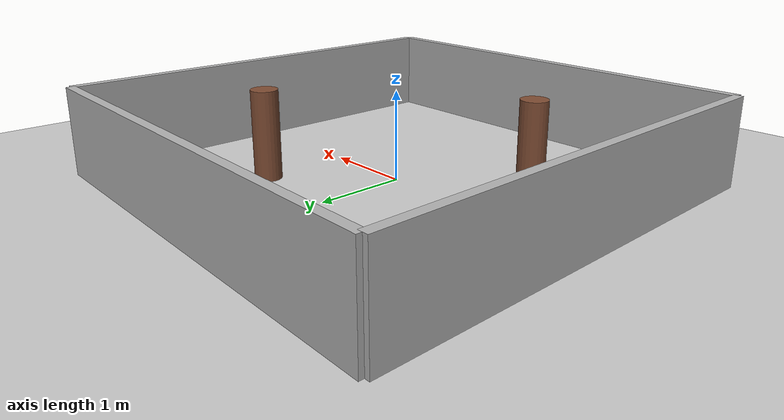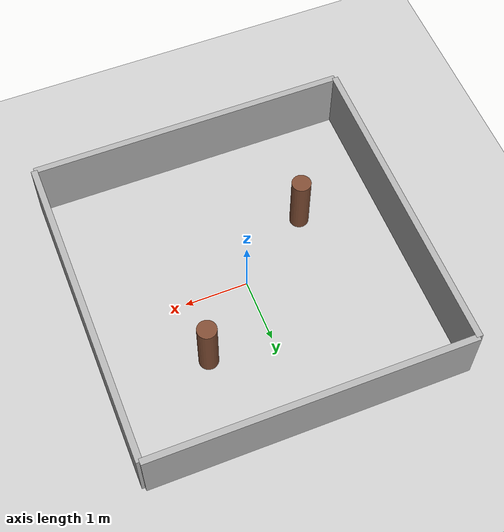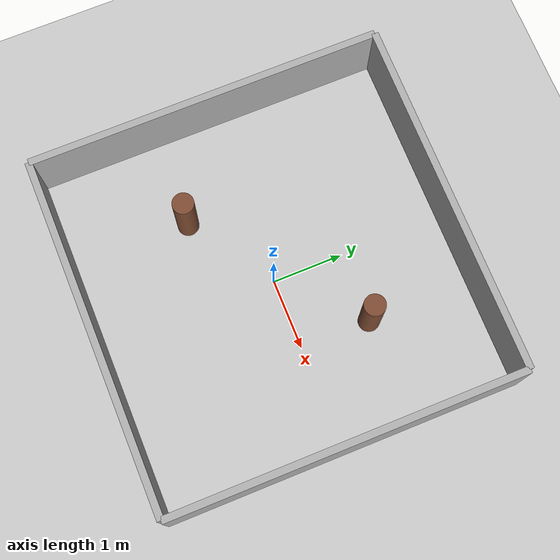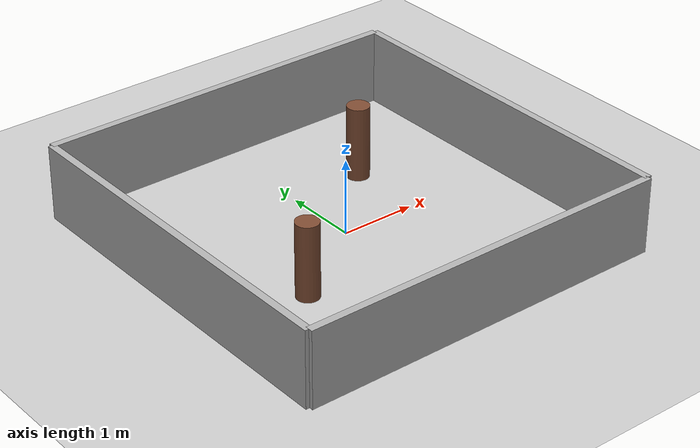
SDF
<?xml version="1.0" ?>
<sdf version="1.6">
  <world name="walls_world">

    <include><uri>model://sun</uri></include>
    <include><uri>model://ground_plane</uri></include>

    <model name="wall_north">
      <static>true</static>
      <pose>0 2.5 0.5 0 0 0</pose>
      <link name="link">
        <collision name="collision">
          <geometry><box><size>5.0 0.1 1.0</size></box></geometry>
        </collision>
        <visual name="visual">
          <geometry><box><size>5.0 0.1 1.0</size></box></geometry>
          <material><ambient>0.7 0.7 0.7 1</ambient><diffuse>0.7 0.7 0.7 1</diffuse></material>
        </visual>
      </link>
    </model>

    <model name="wall_south">
      <static>true</static>
      <pose>0 -2.5 0.5 0 0 0</pose>
      <link name="link">
        <collision name="collision">
          <geometry><box><size>5.0 0.1 1.0</size></box></geometry>
        </collision>
        <visual name="visual">
          <geometry><box><size>5.0 0.1 1.0</size></box></geometry>
          <material><ambient>0.7 0.7 0.7 1</ambient><diffuse>0.7 0.7 0.7 1</diffuse></material>
        </visual>
      </link>
    </model>

    <model name="wall_east">
      <static>true</static>
      <pose>2.5 0 0.5 0 0 0</pose>
      <link name="link">
        <collision name="collision">
          <geometry><box><size>0.1 5.0 1.0</size></box></geometry>
        </collision>
        <visual name="visual">
          <geometry><box><size>0.1 5.0 1.0</size></box></geometry>
          <material><ambient>0.7 0.7 0.7 1</ambient><diffuse>0.7 0.7 0.7 1</diffuse></material>
        </visual>
      </link>
    </model>

    <model name="wall_west">
      <static>true</static>
      <pose>-2.5 0 0.5 0 0 0</pose>
      <link name="link">
        <collision name="collision">
          <geometry><box><size>0.1 5.0 1.0</size></box></geometry>
        </collision>
        <visual name="visual">
          <geometry><box><size>0.1 5.0 1.0</size></box></geometry>
          <material><ambient>0.7 0.7 0.7 1</ambient><diffuse>0.7 0.7 0.7 1</diffuse></material>
        </visual>
      </link>
    </model>

    <model name="pillar_1">
      <static>true</static>
      <pose>1.0 1.0 0.5 0 0 0</pose>
      <link name="link">
        <collision name="collision">
          <geometry><cylinder><radius>0.15</radius><length>1.0</length></cylinder></geometry>
        </collision>
        <visual name="visual">
          <geometry><cylinder><radius>0.15</radius><length>1.0</length></cylinder></geometry>
          <material><ambient>0.5 0.3 0.2 1</ambient><diffuse>0.5 0.3 0.2 1</diffuse></material>
        </visual>
      </link>
    </model>

    <model name="pillar_2">
      <static>true</static>
      <pose>-1.2 -0.8 0.5 0 0 0</pose>
      <link name="link">
        <collision name="collision">
          <geometry><cylinder><radius>0.15</radius><length>1.0</length></cylinder></geometry>
        </collision>
        <visual name="visual">
          <geometry><cylinder><radius>0.15</radius><length>1.0</length></cylinder></geometry>
          <material><ambient>0.5 0.3 0.2 1</ambient><diffuse>0.5 0.3 0.2 1</diffuse></material>
        </visual>
      </link>
    </model>

  </world>
</sdf>
